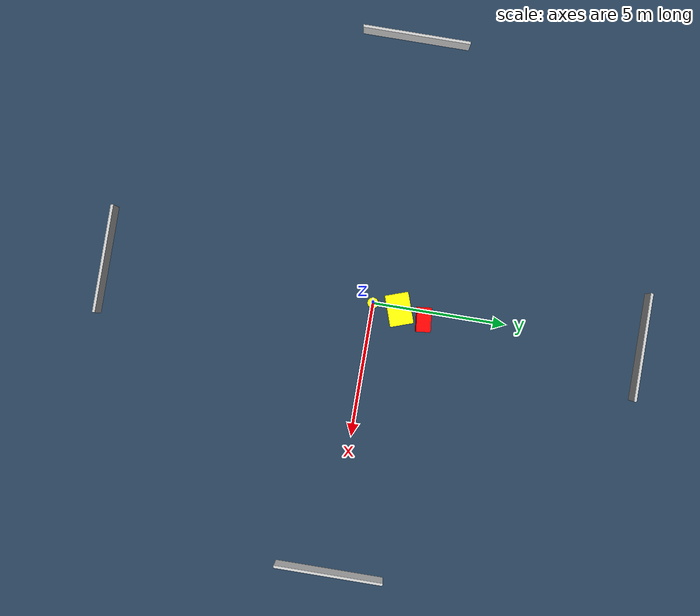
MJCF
<?xml version="1.0" ?>
<mujoco model="generated_environment">
  <option timestep="0.01" integrator="RK4" cone="elliptic"/>
  <default>
    <geom density="1"/>
  </default>
  <asset>
    <texture builtin="gradient" height="3072" name="skybox" rgb1="0.3 0.5 0.7" rgb2="0 0 0" type="skybox" width="512"/>
    <texture builtin="checker" height="300" name="groundplane" rgb1="0.2 0.3 0.4" rgb2="0.1 0.2 0.3" type="2d" width="300"/>
    <material name="groundplane" reflectance="0.2" texrepeat="5 5" texture="groundplane"/>
  </asset>
  <worldbody>
    <light dir="0 0 -1" directional="true" pos="0 0 1.5"/>
    <geom condim="3" friction="0.5 0.005 0.001" material="groundplane" name="floor" pos="0 0 0" size="0 0 0.05" type="plane"/>
    <body name="walls">
      <geom name="wall_1" condim="4" pos="-10.0 0.0 0.3" rgba="0.800000011920929 0.800000011920929 0.800000011920929 1.0" size="0.05 2.0 0.3" type="box"/>
      <geom name="wall_2" condim="4" pos="10.0 0.0 0.3" rgba="0.800000011920929 0.800000011920929 0.800000011920929 1.0" size="0.05 2.0 0.3" type="box"/>
      <geom name="wall_3" condim="4" pos="0.0 -10.0 0.3" rgba="0.800000011920929 0.800000011920929 0.800000011920929 1.0" size="2.0 0.05 0.3" type="box"/>
      <geom name="wall_4" condim="4" pos="0.0 10.0 0.3" rgba="0.800000011920929 0.800000011920929 0.800000011920929 1.0" size="2.0 0.05 0.3" type="box"/>
    </body>
    <body name="robot">
      <joint name="joint_x" type="slide" pos="0 0 0" axis="1 0 0"/>
      <joint name="joint_y" type="slide" pos="0 0 0" axis="0 1 0"/>
      <geom name="robot" type="cylinder" pos="0.0 0.0 0.2" size="0.2 0.2 0.0" mass="5.0" friction="1.0 0.005 0.0001" condim="4" rgba="1.0 1.0 0.0 1.0"/>
    </body>
    <body name="obstacle_1_movable">
      <geom name="obstacle_1_movable" condim="4" pos="0.08269331610432554 0.985497119470824 0.3" euler="0 0 19.047785489437853" friction="0.0 0.005 0.001" rgba="1.0 1.0 0.0 1.0" size="0.5822806082511641 0.43516585655682444 0.3" type="box" mass="0.1"/>
      <joint type="free"/>
    </body>
    <body name="obstacle_2_static">
      <geom name="obstacle_2_static" condim="4" pos="0.3044167106881046 1.9326877711042687 0.3" euler="0 0 95.96789685714603" friction="0.0 0.005 0.001" rgba="1.0 0.0 0.0 1.0" size="0.2664214152253766 0.452473096923547 0.3" type="box"/>
    </body>
  </worldbody>
  <actuator>
    <motor name="actuator_x" joint="joint_x" gear="1" ctrlrange="-1 1"/>
    <motor name="actuator_y" joint="joint_y" gear="1" ctrlrange="-1 1"/>
  </actuator>
</mujoco>
